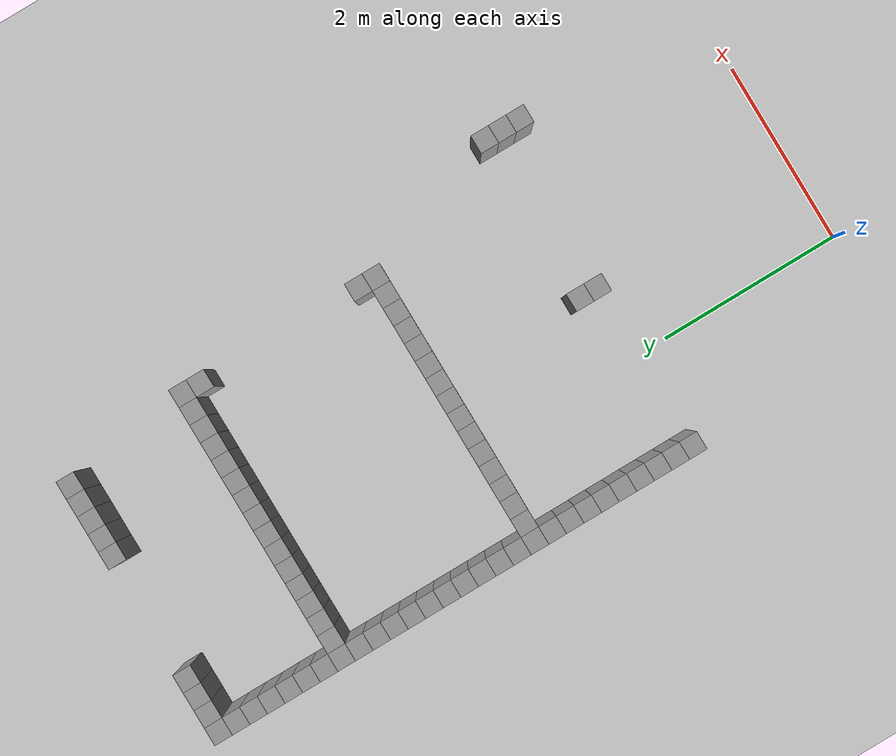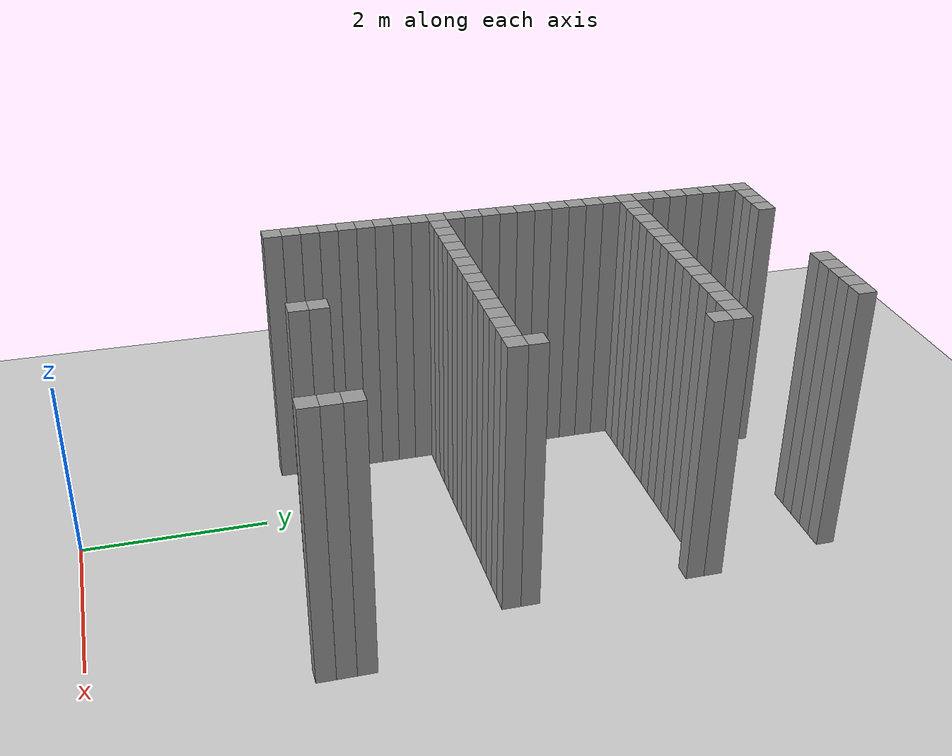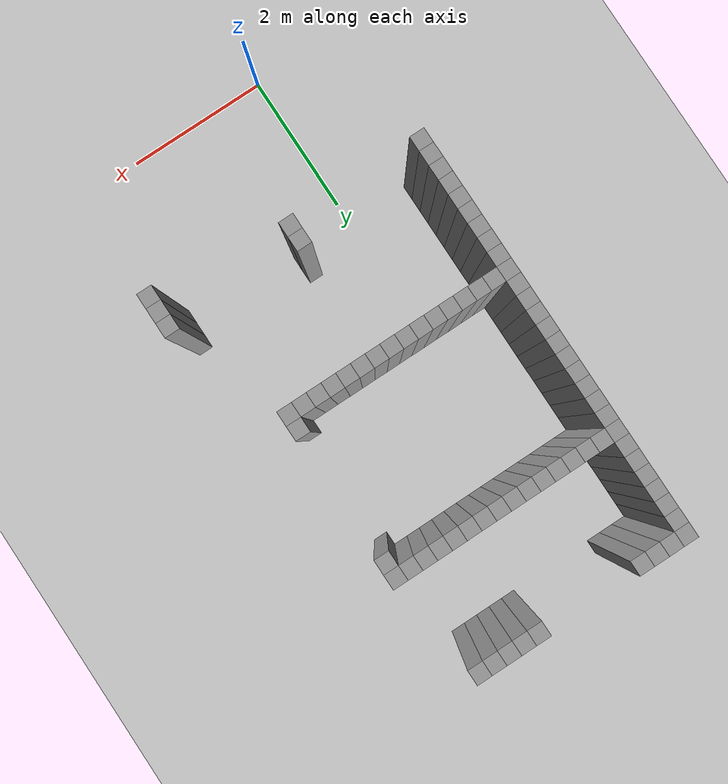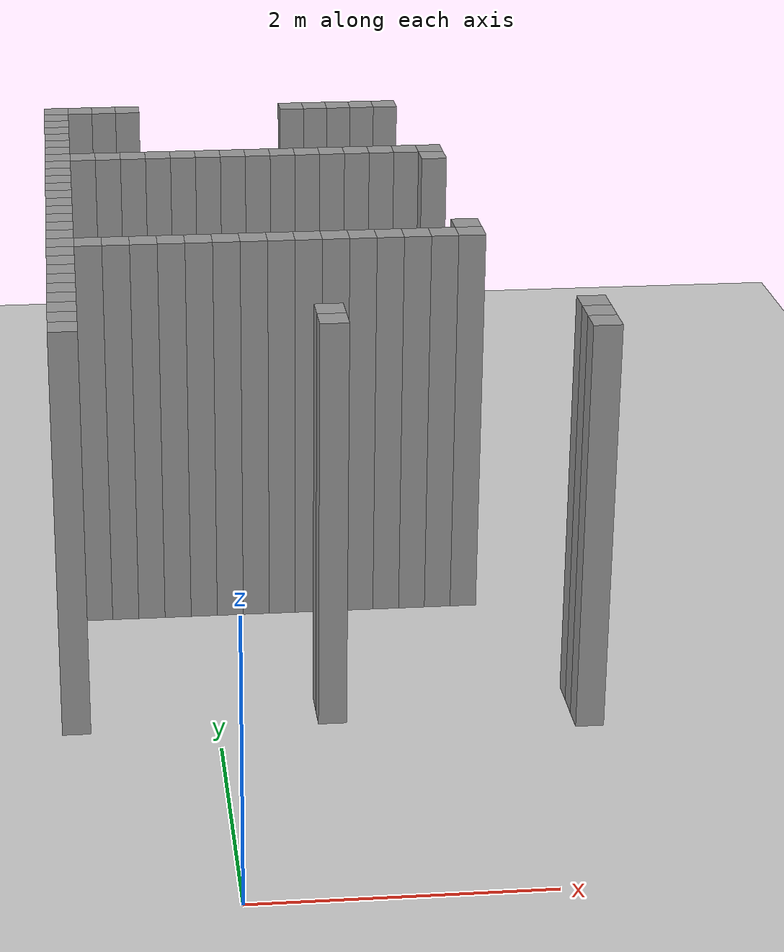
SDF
<sdf version="1.7">
 <world name="default">
  <model name="ground_plane">
   <static>1</static>
   <link name="link">
    <collision name="collision">
     <geometry><plane><normal>0 0 1</normal><size>100 100</size></plane></geometry>
     <surface>
      <contact><collide_bitmask>65535</collide_bitmask></contact>
      <friction><ode><mu>100</mu><mu2>50</mu2></ode></friction>
     </surface>
    </collision>
    <visual name="visual">
     <cast_shadows>0</cast_shadows>
     <geometry><plane><normal>0 0 1</normal><size>100 100</size></plane></geometry>
     <material>
      <script><uri>file://media/materials/scripts/gazebo.material</uri><name>Gazebo/Grey</name></script>
     </material>
    </visual>
   </link>
  </model>
  <model name="image1">
   <pose>-1 -1 0 0 -0 0</pose>
   <link name="Wall_17">
    <collision name="Wall_17_Collision">
     <geometry><box><size>0.2 0.2 3</size></box></geometry>
     <pose>0 0 1.5 0 -0 0</pose>
    </collision>
    <visual name="Wall_17_Visual">
     <pose>0 0 1.5 0 -0 0</pose>
     <geometry><box><size>0.2 0.2 3</size></box></geometry>
     <material>
      <script><uri>file://media/materials/scripts/gazebo.material</uri><name>Gazebo/Grey</name></script>
      <ambient>1 1 1 1</ambient>
     </material>
     <meta><layer>0</layer></meta>
    </visual>
    <pose>0.0 3.4000000000000004 0 0 -0 0</pose>
   </link>
   <link name="Wall_18">
    <collision name="Wall_18_Collision">
     <geometry><box><size>0.2 0.2 3</size></box></geometry>
     <pose>0 0 1.5 0 -0 0</pose>
    </collision>
    <visual name="Wall_18_Visual">
     <pose>0 0 1.5 0 -0 0</pose>
     <geometry><box><size>0.2 0.2 3</size></box></geometry>
     <material>
      <script><uri>file://media/materials/scripts/gazebo.material</uri><name>Gazebo/Grey</name></script>
      <ambient>1 1 1 1</ambient>
     </material>
     <meta><layer>0</layer></meta>
    </visual>
    <pose>0.0 3.6 0 0 -0 0</pose>
   </link>
   <link name="Wall_19">
    <collision name="Wall_19_Collision">
     <geometry><box><size>0.2 0.2 3</size></box></geometry>
     <pose>0 0 1.5 0 -0 0</pose>
    </collision>
    <visual name="Wall_19_Visual">
     <pose>0 0 1.5 0 -0 0</pose>
     <geometry><box><size>0.2 0.2 3</size></box></geometry>
     <material>
      <script><uri>file://media/materials/scripts/gazebo.material</uri><name>Gazebo/Grey</name></script>
      <ambient>1 1 1 1</ambient>
     </material>
     <meta><layer>0</layer></meta>
    </visual>
    <pose>0.0 3.8000000000000003 0 0 -0 0</pose>
   </link>
   <link name="Wall_20">
    <collision name="Wall_20_Collision">
     <geometry><box><size>0.2 0.2 3</size></box></geometry>
     <pose>0 0 1.5 0 -0 0</pose>
    </collision>
    <visual name="Wall_20_Visual">
     <pose>0 0 1.5 0 -0 0</pose>
     <geometry><box><size>0.2 0.2 3</size></box></geometry>
     <material>
      <script><uri>file://media/materials/scripts/gazebo.material</uri><name>Gazebo/Grey</name></script>
      <ambient>1 1 1 1</ambient>
     </material>
     <meta><layer>0</layer></meta>
    </visual>
    <pose>0.0 4.0 0 0 -0 0</pose>
   </link>
   <link name="Wall_21">
    <collision name="Wall_21_Collision">
     <geometry><box><size>0.2 0.2 3</size></box></geometry>
     <pose>0 0 1.5 0 -0 0</pose>
    </collision>
    <visual name="Wall_21_Visual">
     <pose>0 0 1.5 0 -0 0</pose>
     <geometry><box><size>0.2 0.2 3</size></box></geometry>
     <material>
      <script><uri>file://media/materials/scripts/gazebo.material</uri><name>Gazebo/Grey</name></script>
      <ambient>1 1 1 1</ambient>
     </material>
     <meta><layer>0</layer></meta>
    </visual>
    <pose>0.0 4.2 0 0 -0 0</pose>
   </link>
   <link name="Wall_22">
    <collision name="Wall_22_Collision">
     <geometry><box><size>0.2 0.2 3</size></box></geometry>
     <pose>0 0 1.5 0 -0 0</pose>
    </collision>
    <visual name="Wall_22_Visual">
     <pose>0 0 1.5 0 -0 0</pose>
     <geometry><box><size>0.2 0.2 3</size></box></geometry>
     <material>
      <script><uri>file://media/materials/scripts/gazebo.material</uri><name>Gazebo/Grey</name></script>
      <ambient>1 1 1 1</ambient>
     </material>
     <meta><layer>0</layer></meta>
    </visual>
    <pose>0.0 4.4 0 0 -0 0</pose>
   </link>
   <link name="Wall_23">
    <collision name="Wall_23_Collision">
     <geometry><box><size>0.2 0.2 3</size></box></geometry>
     <pose>0 0 1.5 0 -0 0</pose>
    </collision>
    <visual name="Wall_23_Visual">
     <pose>0 0 1.5 0 -0 0</pose>
     <geometry><box><size>0.2 0.2 3</size></box></geometry>
     <material>
      <script><uri>file://media/materials/scripts/gazebo.material</uri><name>Gazebo/Grey</name></script>
      <ambient>1 1 1 1</ambient>
     </material>
     <meta><layer>0</layer></meta>
    </visual>
    <pose>0.0 4.6000000000000005 0 0 -0 0</pose>
   </link>
   <link name="Wall_24">
    <collision name="Wall_24_Collision">
     <geometry><box><size>0.2 0.2 3</size></box></geometry>
     <pose>0 0 1.5 0 -0 0</pose>
    </collision>
    <visual name="Wall_24_Visual">
     <pose>0 0 1.5 0 -0 0</pose>
     <geometry><box><size>0.2 0.2 3</size></box></geometry>
     <material>
      <script><uri>file://media/materials/scripts/gazebo.material</uri><name>Gazebo/Grey</name></script>
      <ambient>1 1 1 1</ambient>
     </material>
     <meta><layer>0</layer></meta>
    </visual>
    <pose>0.0 4.800000000000001 0 0 -0 0</pose>
   </link>
   <link name="Wall_25">
    <collision name="Wall_25_Collision">
     <geometry><box><size>0.2 0.2 3</size></box></geometry>
     <pose>0 0 1.5 0 -0 0</pose>
    </collision>
    <visual name="Wall_25_Visual">
     <pose>0 0 1.5 0 -0 0</pose>
     <geometry><box><size>0.2 0.2 3</size></box></geometry>
     <material>
      <script><uri>file://media/materials/scripts/gazebo.material</uri><name>Gazebo/Grey</name></script>
      <ambient>1 1 1 1</ambient>
     </material>
     <meta><layer>0</layer></meta>
    </visual>
    <pose>0.0 5.0 0 0 -0 0</pose>
   </link>
   <link name="Wall_26">
    <collision name="Wall_26_Collision">
     <geometry><box><size>0.2 0.2 3</size></box></geometry>
     <pose>0 0 1.5 0 -0 0</pose>
    </collision>
    <visual name="Wall_26_Visual">
     <pose>0 0 1.5 0 -0 0</pose>
     <geometry><box><size>0.2 0.2 3</size></box></geometry>
     <material>
      <script><uri>file://media/materials/scripts/gazebo.material</uri><name>Gazebo/Grey</name></script>
      <ambient>1 1 1 1</ambient>
     </material>
     <meta><layer>0</layer></meta>
    </visual>
    <pose>0.0 5.2 0 0 -0 0</pose>
   </link>
   <link name="Wall_27">
    <collision name="Wall_27_Collision">
     <geometry><box><size>0.2 0.2 3</size></box></geometry>
     <pose>0 0 1.5 0 -0 0</pose>
    </collision>
    <visual name="Wall_27_Visual">
     <pose>0 0 1.5 0 -0 0</pose>
     <geometry><box><size>0.2 0.2 3</size></box></geometry>
     <material>
      <script><uri>file://media/materials/scripts/gazebo.material</uri><name>Gazebo/Grey</name></script>
      <ambient>1 1 1 1</ambient>
     </material>
     <meta><layer>0</layer></meta>
    </visual>
    <pose>0.0 5.4 0 0 -0 0</pose>
   </link>
   <link name="Wall_28">
    <collision name="Wall_28_Collision">
     <geometry><box><size>0.2 0.2 3</size></box></geometry>
     <pose>0 0 1.5 0 -0 0</pose>
    </collision>
    <visual name="Wall_28_Visual">
     <pose>0 0 1.5 0 -0 0</pose>
     <geometry><box><size>0.2 0.2 3</size></box></geometry>
     <material>
      <script><uri>file://media/materials/scripts/gazebo.material</uri><name>Gazebo/Grey</name></script>
      <ambient>1 1 1 1</ambient>
     </material>
     <meta><layer>0</layer></meta>
    </visual>
    <pose>0.0 5.6000000000000005 0 0 -0 0</pose>
   </link>
   <link name="Wall_29">
    <collision name="Wall_29_Collision">
     <geometry><box><size>0.2 0.2 3</size></box></geometry>
     <pose>0 0 1.5 0 -0 0</pose>
    </collision>
    <visual name="Wall_29_Visual">
     <pose>0 0 1.5 0 -0 0</pose>
     <geometry><box><size>0.2 0.2 3</size></box></geometry>
     <material>
      <script><uri>file://media/materials/scripts/gazebo.material</uri><name>Gazebo/Grey</name></script>
      <ambient>1 1 1 1</ambient>
     </material>
     <meta><layer>0</layer></meta>
    </visual>
    <pose>0.0 5.800000000000001 0 0 -0 0</pose>
   </link>
   <link name="Wall_30">
    <collision name="Wall_30_Collision">
     <geometry><box><size>0.2 0.2 3</size></box></geometry>
     <pose>0 0 1.5 0 -0 0</pose>
    </collision>
    <visual name="Wall_30_Visual">
     <pose>0 0 1.5 0 -0 0</pose>
     <geometry><box><size>0.2 0.2 3</size></box></geometry>
     <material>
      <script><uri>file://media/materials/scripts/gazebo.material</uri><name>Gazebo/Grey</name></script>
      <ambient>1 1 1 1</ambient>
     </material>
     <meta><layer>0</layer></meta>
    </visual>
    <pose>0.0 6.0 0 0 -0 0</pose>
   </link>
   <link name="Wall_31">
    <collision name="Wall_31_Collision">
     <geometry><box><size>0.2 0.2 3</size></box></geometry>
     <pose>0 0 1.5 0 -0 0</pose>
    </collision>
    <visual name="Wall_31_Visual">
     <pose>0 0 1.5 0 -0 0</pose>
     <geometry><box><size>0.2 0.2 3</size></box></geometry>
     <material>
      <script><uri>file://media/materials/scripts/gazebo.material</uri><name>Gazebo/Grey</name></script>
      <ambient>1 1 1 1</ambient>
     </material>
     <meta><layer>0</layer></meta>
    </visual>
    <pose>0.0 6.2 0 0 -0 0</pose>
   </link>
   <link name="Wall_32">
    <collision name="Wall_32_Collision">
     <geometry><box><size>0.2 0.2 3</size></box></geometry>
     <pose>0 0 1.5 0 -0 0</pose>
    </collision>
    <visual name="Wall_32_Visual">
     <pose>0 0 1.5 0 -0 0</pose>
     <geometry><box><size>0.2 0.2 3</size></box></geometry>
     <material>
      <script><uri>file://media/materials/scripts/gazebo.material</uri><name>Gazebo/Grey</name></script>
      <ambient>1 1 1 1</ambient>
     </material>
     <meta><layer>0</layer></meta>
    </visual>
    <pose>0.0 6.4 0 0 -0 0</pose>
   </link>
   <link name="Wall_33">
    <collision name="Wall_33_Collision">
     <geometry><box><size>0.2 0.2 3</size></box></geometry>
     <pose>0 0 1.5 0 -0 0</pose>
    </collision>
    <visual name="Wall_33_Visual">
     <pose>0 0 1.5 0 -0 0</pose>
     <geometry><box><size>0.2 0.2 3</size></box></geometry>
     <material>
      <script><uri>file://media/materials/scripts/gazebo.material</uri><name>Gazebo/Grey</name></script>
      <ambient>1 1 1 1</ambient>
     </material>
     <meta><layer>0</layer></meta>
    </visual>
    <pose>0.0 6.6000000000000005 0 0 -0 0</pose>
   </link>
   <link name="Wall_34">
    <collision name="Wall_34_Collision">
     <geometry><box><size>0.2 0.2 3</size></box></geometry>
     <pose>0 0 1.5 0 -0 0</pose>
    </collision>
    <visual name="Wall_34_Visual">
     <pose>0 0 1.5 0 -0 0</pose>
     <geometry><box><size>0.2 0.2 3</size></box></geometry>
     <material>
      <script><uri>file://media/materials/scripts/gazebo.material</uri><name>Gazebo/Grey</name></script>
      <ambient>1 1 1 1</ambient>
     </material>
     <meta><layer>0</layer></meta>
    </visual>
    <pose>0.0 6.800000000000001 0 0 -0 0</pose>
   </link>
   <link name="Wall_35">
    <collision name="Wall_35_Collision">
     <geometry><box><size>0.2 0.2 3</size></box></geometry>
     <pose>0 0 1.5 0 -0 0</pose>
    </collision>
    <visual name="Wall_35_Visual">
     <pose>0 0 1.5 0 -0 0</pose>
     <geometry><box><size>0.2 0.2 3</size></box></geometry>
     <material>
      <script><uri>file://media/materials/scripts/gazebo.material</uri><name>Gazebo/Grey</name></script>
      <ambient>1 1 1 1</ambient>
     </material>
     <meta><layer>0</layer></meta>
    </visual>
    <pose>0.0 7.0 0 0 -0 0</pose>
   </link>
   <link name="Wall_36">
    <collision name="Wall_36_Collision">
     <geometry><box><size>0.2 0.2 3</size></box></geometry>
     <pose>0 0 1.5 0 -0 0</pose>
    </collision>
    <visual name="Wall_36_Visual">
     <pose>0 0 1.5 0 -0 0</pose>
     <geometry><box><size>0.2 0.2 3</size></box></geometry>
     <material>
      <script><uri>file://media/materials/scripts/gazebo.material</uri><name>Gazebo/Grey</name></script>
      <ambient>1 1 1 1</ambient>
     </material>
     <meta><layer>0</layer></meta>
    </visual>
    <pose>0.0 7.2 0 0 -0 0</pose>
   </link>
   <link name="Wall_37">
    <collision name="Wall_37_Collision">
     <geometry><box><size>0.2 0.2 3</size></box></geometry>
     <pose>0 0 1.5 0 -0 0</pose>
    </collision>
    <visual name="Wall_37_Visual">
     <pose>0 0 1.5 0 -0 0</pose>
     <geometry><box><size>0.2 0.2 3</size></box></geometry>
     <material>
      <script><uri>file://media/materials/scripts/gazebo.material</uri><name>Gazebo/Grey</name></script>
      <ambient>1 1 1 1</ambient>
     </material>
     <meta><layer>0</layer></meta>
    </visual>
    <pose>0.0 7.4 0 0 -0 0</pose>
   </link>
   <link name="Wall_38">
    <collision name="Wall_38_Collision">
     <geometry><box><size>0.2 0.2 3</size></box></geometry>
     <pose>0 0 1.5 0 -0 0</pose>
    </collision>
    <visual name="Wall_38_Visual">
     <pose>0 0 1.5 0 -0 0</pose>
     <geometry><box><size>0.2 0.2 3</size></box></geometry>
     <material>
      <script><uri>file://media/materials/scripts/gazebo.material</uri><name>Gazebo/Grey</name></script>
      <ambient>1 1 1 1</ambient>
     </material>
     <meta><layer>0</layer></meta>
    </visual>
    <pose>0.0 7.6000000000000005 0 0 -0 0</pose>
   </link>
   <link name="Wall_39">
    <collision name="Wall_39_Collision">
     <geometry><box><size>0.2 0.2 3</size></box></geometry>
     <pose>0 0 1.5 0 -0 0</pose>
    </collision>
    <visual name="Wall_39_Visual">
     <pose>0 0 1.5 0 -0 0</pose>
     <geometry><box><size>0.2 0.2 3</size></box></geometry>
     <material>
      <script><uri>file://media/materials/scripts/gazebo.material</uri><name>Gazebo/Grey</name></script>
      <ambient>1 1 1 1</ambient>
     </material>
     <meta><layer>0</layer></meta>
    </visual>
    <pose>0.0 7.800000000000001 0 0 -0 0</pose>
   </link>
   <link name="Wall_40">
    <collision name="Wall_40_Collision">
     <geometry><box><size>0.2 0.2 3</size></box></geometry>
     <pose>0 0 1.5 0 -0 0</pose>
    </collision>
    <visual name="Wall_40_Visual">
     <pose>0 0 1.5 0 -0 0</pose>
     <geometry><box><size>0.2 0.2 3</size></box></geometry>
     <material>
      <script><uri>file://media/materials/scripts/gazebo.material</uri><name>Gazebo/Grey</name></script>
      <ambient>1 1 1 1</ambient>
     </material>
     <meta><layer>0</layer></meta>
    </visual>
    <pose>0.0 8.0 0 0 -0 0</pose>
   </link>
   <link name="Wall_41">
    <collision name="Wall_41_Collision">
     <geometry><box><size>0.2 0.2 3</size></box></geometry>
     <pose>0 0 1.5 0 -0 0</pose>
    </collision>
    <visual name="Wall_41_Visual">
     <pose>0 0 1.5 0 -0 0</pose>
     <geometry><box><size>0.2 0.2 3</size></box></geometry>
     <material>
      <script><uri>file://media/materials/scripts/gazebo.material</uri><name>Gazebo/Grey</name></script>
      <ambient>1 1 1 1</ambient>
     </material>
     <meta><layer>0</layer></meta>
    </visual>
    <pose>0.0 8.200000000000001 0 0 -0 0</pose>
   </link>
   <link name="Wall_42">
    <collision name="Wall_42_Collision">
     <geometry><box><size>0.2 0.2 3</size></box></geometry>
     <pose>0 0 1.5 0 -0 0</pose>
    </collision>
    <visual name="Wall_42_Visual">
     <pose>0 0 1.5 0 -0 0</pose>
     <geometry><box><size>0.2 0.2 3</size></box></geometry>
     <material>
      <script><uri>file://media/materials/scripts/gazebo.material</uri><name>Gazebo/Grey</name></script>
      <ambient>1 1 1 1</ambient>
     </material>
     <meta><layer>0</layer></meta>
    </visual>
    <pose>0.0 8.4 0 0 -0 0</pose>
   </link>
   <link name="Wall_43">
    <collision name="Wall_43_Collision">
     <geometry><box><size>0.2 0.2 3</size></box></geometry>
     <pose>0 0 1.5 0 -0 0</pose>
    </collision>
    <visual name="Wall_43_Visual">
     <pose>0 0 1.5 0 -0 0</pose>
     <geometry><box><size>0.2 0.2 3</size></box></geometry>
     <material>
      <script><uri>file://media/materials/scripts/gazebo.material</uri><name>Gazebo/Grey</name></script>
      <ambient>1 1 1 1</ambient>
     </material>
     <meta><layer>0</layer></meta>
    </visual>
    <pose>0.0 8.6 0 0 -0 0</pose>
   </link>
   <link name="Wall_44">
    <collision name="Wall_44_Collision">
     <geometry><box><size>0.2 0.2 3</size></box></geometry>
     <pose>0 0 1.5 0 -0 0</pose>
    </collision>
    <visual name="Wall_44_Visual">
     <pose>0 0 1.5 0 -0 0</pose>
     <geometry><box><size>0.2 0.2 3</size></box></geometry>
     <material>
      <script><uri>file://media/materials/scripts/gazebo.material</uri><name>Gazebo/Grey</name></script>
      <ambient>1 1 1 1</ambient>
     </material>
     <meta><layer>0</layer></meta>
    </visual>
    <pose>0.0 8.8 0 0 -0 0</pose>
   </link>
   <link name="Wall_61">
    <collision name="Wall_61_Collision">
     <geometry><box><size>0.2 0.2 3</size></box></geometry>
     <pose>0 0 1.5 0 -0 0</pose>
    </collision>
    <visual name="Wall_61_Visual">
     <pose>0 0 1.5 0 -0 0</pose>
     <geometry><box><size>0.2 0.2 3</size></box></geometry>
     <material>
      <script><uri>file://media/materials/scripts/gazebo.material</uri><name>Gazebo/Grey</name></script>
      <ambient>1 1 1 1</ambient>
     </material>
     <meta><layer>0</layer></meta>
    </visual>
    <pose>0.2 5.2 0 0 -0 0</pose>
   </link>
   <link name="Wall_62">
    <collision name="Wall_62_Collision">
     <geometry><box><size>0.2 0.2 3</size></box></geometry>
     <pose>0 0 1.5 0 -0 0</pose>
    </collision>
    <visual name="Wall_62_Visual">
     <pose>0 0 1.5 0 -0 0</pose>
     <geometry><box><size>0.2 0.2 3</size></box></geometry>
     <material>
      <script><uri>file://media/materials/scripts/gazebo.material</uri><name>Gazebo/Grey</name></script>
      <ambient>1 1 1 1</ambient>
     </material>
     <meta><layer>0</layer></meta>
    </visual>
    <pose>0.2 7.4 0 0 -0 0</pose>
   </link>
   <link name="Wall_63">
    <collision name="Wall_63_Collision">
     <geometry><box><size>0.2 0.2 3</size></box></geometry>
     <pose>0 0 1.5 0 -0 0</pose>
    </collision>
    <visual name="Wall_63_Visual">
     <pose>0 0 1.5 0 -0 0</pose>
     <geometry><box><size>0.2 0.2 3</size></box></geometry>
     <material>
      <script><uri>file://media/materials/scripts/gazebo.material</uri><name>Gazebo/Grey</name></script>
      <ambient>1 1 1 1</ambient>
     </material>
     <meta><layer>0</layer></meta>
    </visual>
    <pose>0.2 8.8 0 0 -0 0</pose>
   </link>
   <link name="Wall_66">
    <collision name="Wall_66_Collision">
     <geometry><box><size>0.2 0.2 3</size></box></geometry>
     <pose>0 0 1.5 0 -0 0</pose>
    </collision>
    <visual name="Wall_66_Visual">
     <pose>0 0 1.5 0 -0 0</pose>
     <geometry><box><size>0.2 0.2 3</size></box></geometry>
     <material>
      <script><uri>file://media/materials/scripts/gazebo.material</uri><name>Gazebo/Grey</name></script>
      <ambient>1 1 1 1</ambient>
     </material>
     <meta><layer>0</layer></meta>
    </visual>
    <pose>0.4 5.2 0 0 -0 0</pose>
   </link>
   <link name="Wall_67">
    <collision name="Wall_67_Collision">
     <geometry><box><size>0.2 0.2 3</size></box></geometry>
     <pose>0 0 1.5 0 -0 0</pose>
    </collision>
    <visual name="Wall_67_Visual">
     <pose>0 0 1.5 0 -0 0</pose>
     <geometry><box><size>0.2 0.2 3</size></box></geometry>
     <material>
      <script><uri>file://media/materials/scripts/gazebo.material</uri><name>Gazebo/Grey</name></script>
      <ambient>1 1 1 1</ambient>
     </material>
     <meta><layer>0</layer></meta>
    </visual>
    <pose>0.4 7.4 0 0 -0 0</pose>
   </link>
   <link name="Wall_68">
    <collision name="Wall_68_Collision">
     <geometry><box><size>0.2 0.2 3</size></box></geometry>
     <pose>0 0 1.5 0 -0 0</pose>
    </collision>
    <visual name="Wall_68_Visual">
     <pose>0 0 1.5 0 -0 0</pose>
     <geometry><box><size>0.2 0.2 3</size></box></geometry>
     <material>
      <script><uri>file://media/materials/scripts/gazebo.material</uri><name>Gazebo/Grey</name></script>
      <ambient>1 1 1 1</ambient>
     </material>
     <meta><layer>0</layer></meta>
    </visual>
    <pose>0.4 8.8 0 0 -0 0</pose>
   </link>
   <link name="Wall_71">
    <collision name="Wall_71_Collision">
     <geometry><box><size>0.2 0.2 3</size></box></geometry>
     <pose>0 0 1.5 0 -0 0</pose>
    </collision>
    <visual name="Wall_71_Visual">
     <pose>0 0 1.5 0 -0 0</pose>
     <geometry><box><size>0.2 0.2 3</size></box></geometry>
     <material>
      <script><uri>file://media/materials/scripts/gazebo.material</uri><name>Gazebo/Grey</name></script>
      <ambient>1 1 1 1</ambient>
     </material>
     <meta><layer>0</layer></meta>
    </visual>
    <pose>0.6000000000000001 5.2 0 0 -0 0</pose>
   </link>
   <link name="Wall_72">
    <collision name="Wall_72_Collision">
     <geometry><box><size>0.2 0.2 3</size></box></geometry>
     <pose>0 0 1.5 0 -0 0</pose>
    </collision>
    <visual name="Wall_72_Visual">
     <pose>0 0 1.5 0 -0 0</pose>
     <geometry><box><size>0.2 0.2 3</size></box></geometry>
     <material>
      <script><uri>file://media/materials/scripts/gazebo.material</uri><name>Gazebo/Grey</name></script>
      <ambient>1 1 1 1</ambient>
     </material>
     <meta><layer>0</layer></meta>
    </visual>
    <pose>0.6000000000000001 7.4 0 0 -0 0</pose>
   </link>
   <link name="Wall_73">
    <collision name="Wall_73_Collision">
     <geometry><box><size>0.2 0.2 3</size></box></geometry>
     <pose>0 0 1.5 0 -0 0</pose>
    </collision>
    <visual name="Wall_73_Visual">
     <pose>0 0 1.5 0 -0 0</pose>
     <geometry><box><size>0.2 0.2 3</size></box></geometry>
     <material>
      <script><uri>file://media/materials/scripts/gazebo.material</uri><name>Gazebo/Grey</name></script>
      <ambient>1 1 1 1</ambient>
     </material>
     <meta><layer>0</layer></meta>
    </visual>
    <pose>0.6000000000000001 8.8 0 0 -0 0</pose>
   </link>
   <link name="Wall_76">
    <collision name="Wall_76_Collision">
     <geometry><box><size>0.2 0.2 3</size></box></geometry>
     <pose>0 0 1.5 0 -0 0</pose>
    </collision>
    <visual name="Wall_76_Visual">
     <pose>0 0 1.5 0 -0 0</pose>
     <geometry><box><size>0.2 0.2 3</size></box></geometry>
     <material>
      <script><uri>file://media/materials/scripts/gazebo.material</uri><name>Gazebo/Grey</name></script>
      <ambient>1 1 1 1</ambient>
     </material>
     <meta><layer>0</layer></meta>
    </visual>
    <pose>0.8 5.2 0 0 -0 0</pose>
   </link>
   <link name="Wall_77">
    <collision name="Wall_77_Collision">
     <geometry><box><size>0.2 0.2 3</size></box></geometry>
     <pose>0 0 1.5 0 -0 0</pose>
    </collision>
    <visual name="Wall_77_Visual">
     <pose>0 0 1.5 0 -0 0</pose>
     <geometry><box><size>0.2 0.2 3</size></box></geometry>
     <material>
      <script><uri>file://media/materials/scripts/gazebo.material</uri><name>Gazebo/Grey</name></script>
      <ambient>1 1 1 1</ambient>
     </material>
     <meta><layer>0</layer></meta>
    </visual>
    <pose>0.8 7.4 0 0 -0 0</pose>
   </link>
   <link name="Wall_80">
    <collision name="Wall_80_Collision">
     <geometry><box><size>0.2 0.2 3</size></box></geometry>
     <pose>0 0 1.5 0 -0 0</pose>
    </collision>
    <visual name="Wall_80_Visual">
     <pose>0 0 1.5 0 -0 0</pose>
     <geometry><box><size>0.2 0.2 3</size></box></geometry>
     <material>
      <script><uri>file://media/materials/scripts/gazebo.material</uri><name>Gazebo/Grey</name></script>
      <ambient>1 1 1 1</ambient>
     </material>
     <meta><layer>0</layer></meta>
    </visual>
    <pose>1.0 5.2 0 0 -0 0</pose>
   </link>
   <link name="Wall_81">
    <collision name="Wall_81_Collision">
     <geometry><box><size>0.2 0.2 3</size></box></geometry>
     <pose>0 0 1.5 0 -0 0</pose>
    </collision>
    <visual name="Wall_81_Visual">
     <pose>0 0 1.5 0 -0 0</pose>
     <geometry><box><size>0.2 0.2 3</size></box></geometry>
     <material>
      <script><uri>file://media/materials/scripts/gazebo.material</uri><name>Gazebo/Grey</name></script>
      <ambient>1 1 1 1</ambient>
     </material>
     <meta><layer>0</layer></meta>
    </visual>
    <pose>1.0 7.4 0 0 -0 0</pose>
   </link>
   <link name="Wall_84">
    <collision name="Wall_84_Collision">
     <geometry><box><size>0.2 0.2 3</size></box></geometry>
     <pose>0 0 1.5 0 -0 0</pose>
    </collision>
    <visual name="Wall_84_Visual">
     <pose>0 0 1.5 0 -0 0</pose>
     <geometry><box><size>0.2 0.2 3</size></box></geometry>
     <material>
      <script><uri>file://media/materials/scripts/gazebo.material</uri><name>Gazebo/Grey</name></script>
      <ambient>1 1 1 1</ambient>
     </material>
     <meta><layer>0</layer></meta>
    </visual>
    <pose>1.2000000000000002 5.2 0 0 -0 0</pose>
   </link>
   <link name="Wall_85">
    <collision name="Wall_85_Collision">
     <geometry><box><size>0.2 0.2 3</size></box></geometry>
     <pose>0 0 1.5 0 -0 0</pose>
    </collision>
    <visual name="Wall_85_Visual">
     <pose>0 0 1.5 0 -0 0</pose>
     <geometry><box><size>0.2 0.2 3</size></box></geometry>
     <material>
      <script><uri>file://media/materials/scripts/gazebo.material</uri><name>Gazebo/Grey</name></script>
      <ambient>1 1 1 1</ambient>
     </material>
     <meta><layer>0</layer></meta>
    </visual>
    <pose>1.2000000000000002 7.4 0 0 -0 0</pose>
   </link>
   <link name="Wall_88">
    <collision name="Wall_88_Collision">
     <geometry><box><size>0.2 0.2 3</size></box></geometry>
     <pose>0 0 1.5 0 -0 0</pose>
    </collision>
    <visual name="Wall_88_Visual">
     <pose>0 0 1.5 0 -0 0</pose>
     <geometry><box><size>0.2 0.2 3</size></box></geometry>
     <material>
      <script><uri>file://media/materials/scripts/gazebo.material</uri><name>Gazebo/Grey</name></script>
      <ambient>1 1 1 1</ambient>
     </material>
     <meta><layer>0</layer></meta>
    </visual>
    <pose>1.4000000000000001 5.2 0 0 -0 0</pose>
   </link>
   <link name="Wall_89">
    <collision name="Wall_89_Collision">
     <geometry><box><size>0.2 0.2 3</size></box></geometry>
     <pose>0 0 1.5 0 -0 0</pose>
    </collision>
    <visual name="Wall_89_Visual">
     <pose>0 0 1.5 0 -0 0</pose>
     <geometry><box><size>0.2 0.2 3</size></box></geometry>
     <material>
      <script><uri>file://media/materials/scripts/gazebo.material</uri><name>Gazebo/Grey</name></script>
      <ambient>1 1 1 1</ambient>
     </material>
     <meta><layer>0</layer></meta>
    </visual>
    <pose>1.4000000000000001 7.4 0 0 -0 0</pose>
   </link>
   <link name="Wall_92">
    <collision name="Wall_92_Collision">
     <geometry><box><size>0.2 0.2 3</size></box></geometry>
     <pose>0 0 1.5 0 -0 0</pose>
    </collision>
    <visual name="Wall_92_Visual">
     <pose>0 0 1.5 0 -0 0</pose>
     <geometry><box><size>0.2 0.2 3</size></box></geometry>
     <material>
      <script><uri>file://media/materials/scripts/gazebo.material</uri><name>Gazebo/Grey</name></script>
      <ambient>1 1 1 1</ambient>
     </material>
     <meta><layer>0</layer></meta>
    </visual>
    <pose>1.6 5.2 0 0 -0 0</pose>
   </link>
   <link name="Wall_93">
    <collision name="Wall_93_Collision">
     <geometry><box><size>0.2 0.2 3</size></box></geometry>
     <pose>0 0 1.5 0 -0 0</pose>
    </collision>
    <visual name="Wall_93_Visual">
     <pose>0 0 1.5 0 -0 0</pose>
     <geometry><box><size>0.2 0.2 3</size></box></geometry>
     <material>
      <script><uri>file://media/materials/scripts/gazebo.material</uri><name>Gazebo/Grey</name></script>
      <ambient>1 1 1 1</ambient>
     </material>
     <meta><layer>0</layer></meta>
    </visual>
    <pose>1.6 7.4 0 0 -0 0</pose>
   </link>
   <link name="Wall_112">
    <collision name="Wall_112_Collision">
     <geometry><box><size>0.2 0.2 3</size></box></geometry>
     <pose>0 0 1.5 0 -0 0</pose>
    </collision>
    <visual name="Wall_112_Visual">
     <pose>0 0 1.5 0 -0 0</pose>
     <geometry><box><size>0.2 0.2 3</size></box></geometry>
     <material>
      <script><uri>file://media/materials/scripts/gazebo.material</uri><name>Gazebo/Grey</name></script>
      <ambient>1 1 1 1</ambient>
     </material>
     <meta><layer>0</layer></meta>
    </visual>
    <pose>1.8 3.4000000000000004 0 0 -0 0</pose>
   </link>
   <link name="Wall_113">
    <collision name="Wall_113_Collision">
     <geometry><box><size>0.2 0.2 3</size></box></geometry>
     <pose>0 0 1.5 0 -0 0</pose>
    </collision>
    <visual name="Wall_113_Visual">
     <pose>0 0 1.5 0 -0 0</pose>
     <geometry><box><size>0.2 0.2 3</size></box></geometry>
     <material>
      <script><uri>file://media/materials/scripts/gazebo.material</uri><name>Gazebo/Grey</name></script>
      <ambient>1 1 1 1</ambient>
     </material>
     <meta><layer>0</layer></meta>
    </visual>
    <pose>1.8 3.6 0 0 -0 0</pose>
   </link>
   <link name="Wall_114">
    <collision name="Wall_114_Collision">
     <geometry><box><size>0.2 0.2 3</size></box></geometry>
     <pose>0 0 1.5 0 -0 0</pose>
    </collision>
    <visual name="Wall_114_Visual">
     <pose>0 0 1.5 0 -0 0</pose>
     <geometry><box><size>0.2 0.2 3</size></box></geometry>
     <material>
      <script><uri>file://media/materials/scripts/gazebo.material</uri><name>Gazebo/Grey</name></script>
      <ambient>1 1 1 1</ambient>
     </material>
     <meta><layer>0</layer></meta>
    </visual>
    <pose>1.8 5.2 0 0 -0 0</pose>
   </link>
   <link name="Wall_115">
    <collision name="Wall_115_Collision">
     <geometry><box><size>0.2 0.2 3</size></box></geometry>
     <pose>0 0 1.5 0 -0 0</pose>
    </collision>
    <visual name="Wall_115_Visual">
     <pose>0 0 1.5 0 -0 0</pose>
     <geometry><box><size>0.2 0.2 3</size></box></geometry>
     <material>
      <script><uri>file://media/materials/scripts/gazebo.material</uri><name>Gazebo/Grey</name></script>
      <ambient>1 1 1 1</ambient>
     </material>
     <meta><layer>0</layer></meta>
    </visual>
    <pose>1.8 7.4 0 0 -0 0</pose>
   </link>
   <link name="Wall_118">
    <collision name="Wall_118_Collision">
     <geometry><box><size>0.2 0.2 3</size></box></geometry>
     <pose>0 0 1.5 0 -0 0</pose>
    </collision>
    <visual name="Wall_118_Visual">
     <pose>0 0 1.5 0 -0 0</pose>
     <geometry><box><size>0.2 0.2 3</size></box></geometry>
     <material>
      <script><uri>file://media/materials/scripts/gazebo.material</uri><name>Gazebo/Grey</name></script>
      <ambient>1 1 1 1</ambient>
     </material>
     <meta><layer>0</layer></meta>
    </visual>
    <pose>2.0 5.2 0 0 -0 0</pose>
   </link>
   <link name="Wall_119">
    <collision name="Wall_119_Collision">
     <geometry><box><size>0.2 0.2 3</size></box></geometry>
     <pose>0 0 1.5 0 -0 0</pose>
    </collision>
    <visual name="Wall_119_Visual">
     <pose>0 0 1.5 0 -0 0</pose>
     <geometry><box><size>0.2 0.2 3</size></box></geometry>
     <material>
      <script><uri>file://media/materials/scripts/gazebo.material</uri><name>Gazebo/Grey</name></script>
      <ambient>1 1 1 1</ambient>
     </material>
     <meta><layer>0</layer></meta>
    </visual>
    <pose>2.0 7.4 0 0 -0 0</pose>
   </link>
   <link name="Wall_120">
    <collision name="Wall_120_Collision">
     <geometry><box><size>0.2 0.2 3</size></box></geometry>
     <pose>0 0 1.5 0 -0 0</pose>
    </collision>
    <visual name="Wall_120_Visual">
     <pose>0 0 1.5 0 -0 0</pose>
     <geometry><box><size>0.2 0.2 3</size></box></geometry>
     <material>
      <script><uri>file://media/materials/scripts/gazebo.material</uri><name>Gazebo/Grey</name></script>
      <ambient>1 1 1 1</ambient>
     </material>
     <meta><layer>0</layer></meta>
    </visual>
    <pose>2.0 8.8 0 0 -0 0</pose>
   </link>
   <link name="Wall_123">
    <collision name="Wall_123_Collision">
     <geometry><box><size>0.2 0.2 3</size></box></geometry>
     <pose>0 0 1.5 0 -0 0</pose>
    </collision>
    <visual name="Wall_123_Visual">
     <pose>0 0 1.5 0 -0 0</pose>
     <geometry><box><size>0.2 0.2 3</size></box></geometry>
     <material>
      <script><uri>file://media/materials/scripts/gazebo.material</uri><name>Gazebo/Grey</name></script>
      <ambient>1 1 1 1</ambient>
     </material>
     <meta><layer>0</layer></meta>
    </visual>
    <pose>2.2 5.2 0 0 -0 0</pose>
   </link>
   <link name="Wall_124">
    <collision name="Wall_124_Collision">
     <geometry><box><size>0.2 0.2 3</size></box></geometry>
     <pose>0 0 1.5 0 -0 0</pose>
    </collision>
    <visual name="Wall_124_Visual">
     <pose>0 0 1.5 0 -0 0</pose>
     <geometry><box><size>0.2 0.2 3</size></box></geometry>
     <material>
      <script><uri>file://media/materials/scripts/gazebo.material</uri><name>Gazebo/Grey</name></script>
      <ambient>1 1 1 1</ambient>
     </material>
     <meta><layer>0</layer></meta>
    </visual>
    <pose>2.2 7.4 0 0 -0 0</pose>
   </link>
   <link name="Wall_125">
    <collision name="Wall_125_Collision">
     <geometry><box><size>0.2 0.2 3</size></box></geometry>
     <pose>0 0 1.5 0 -0 0</pose>
    </collision>
    <visual name="Wall_125_Visual">
     <pose>0 0 1.5 0 -0 0</pose>
     <geometry><box><size>0.2 0.2 3</size></box></geometry>
     <material>
      <script><uri>file://media/materials/scripts/gazebo.material</uri><name>Gazebo/Grey</name></script>
      <ambient>1 1 1 1</ambient>
     </material>
     <meta><layer>0</layer></meta>
    </visual>
    <pose>2.2 8.8 0 0 -0 0</pose>
   </link>
   <link name="Wall_128">
    <collision name="Wall_128_Collision">
     <geometry><box><size>0.2 0.2 3</size></box></geometry>
     <pose>0 0 1.5 0 -0 0</pose>
    </collision>
    <visual name="Wall_128_Visual">
     <pose>0 0 1.5 0 -0 0</pose>
     <geometry><box><size>0.2 0.2 3</size></box></geometry>
     <material>
      <script><uri>file://media/materials/scripts/gazebo.material</uri><name>Gazebo/Grey</name></script>
      <ambient>1 1 1 1</ambient>
     </material>
     <meta><layer>0</layer></meta>
    </visual>
    <pose>2.4000000000000004 5.2 0 0 -0 0</pose>
   </link>
   <link name="Wall_129">
    <collision name="Wall_129_Collision">
     <geometry><box><size>0.2 0.2 3</size></box></geometry>
     <pose>0 0 1.5 0 -0 0</pose>
    </collision>
    <visual name="Wall_129_Visual">
     <pose>0 0 1.5 0 -0 0</pose>
     <geometry><box><size>0.2 0.2 3</size></box></geometry>
     <material>
      <script><uri>file://media/materials/scripts/gazebo.material</uri><name>Gazebo/Grey</name></script>
      <ambient>1 1 1 1</ambient>
     </material>
     <meta><layer>0</layer></meta>
    </visual>
    <pose>2.4000000000000004 7.4 0 0 -0 0</pose>
   </link>
   <link name="Wall_130">
    <collision name="Wall_130_Collision">
     <geometry><box><size>0.2 0.2 3</size></box></geometry>
     <pose>0 0 1.5 0 -0 0</pose>
    </collision>
    <visual name="Wall_130_Visual">
     <pose>0 0 1.5 0 -0 0</pose>
     <geometry><box><size>0.2 0.2 3</size></box></geometry>
     <material>
      <script><uri>file://media/materials/scripts/gazebo.material</uri><name>Gazebo/Grey</name></script>
      <ambient>1 1 1 1</ambient>
     </material>
     <meta><layer>0</layer></meta>
    </visual>
    <pose>2.4000000000000004 8.8 0 0 -0 0</pose>
   </link>
   <link name="Wall_133">
    <collision name="Wall_133_Collision">
     <geometry><box><size>0.2 0.2 3</size></box></geometry>
     <pose>0 0 1.5 0 -0 0</pose>
    </collision>
    <visual name="Wall_133_Visual">
     <pose>0 0 1.5 0 -0 0</pose>
     <geometry><box><size>0.2 0.2 3</size></box></geometry>
     <material>
      <script><uri>file://media/materials/scripts/gazebo.material</uri><name>Gazebo/Grey</name></script>
      <ambient>1 1 1 1</ambient>
     </material>
     <meta><layer>0</layer></meta>
    </visual>
    <pose>2.6 5.2 0 0 -0 0</pose>
   </link>
   <link name="Wall_134">
    <collision name="Wall_134_Collision">
     <geometry><box><size>0.2 0.2 3</size></box></geometry>
     <pose>0 0 1.5 0 -0 0</pose>
    </collision>
    <visual name="Wall_134_Visual">
     <pose>0 0 1.5 0 -0 0</pose>
     <geometry><box><size>0.2 0.2 3</size></box></geometry>
     <material>
      <script><uri>file://media/materials/scripts/gazebo.material</uri><name>Gazebo/Grey</name></script>
      <ambient>1 1 1 1</ambient>
     </material>
     <meta><layer>0</layer></meta>
    </visual>
    <pose>2.6 7.4 0 0 -0 0</pose>
   </link>
   <link name="Wall_135">
    <collision name="Wall_135_Collision">
     <geometry><box><size>0.2 0.2 3</size></box></geometry>
     <pose>0 0 1.5 0 -0 0</pose>
    </collision>
    <visual name="Wall_135_Visual">
     <pose>0 0 1.5 0 -0 0</pose>
     <geometry><box><size>0.2 0.2 3</size></box></geometry>
     <material>
      <script><uri>file://media/materials/scripts/gazebo.material</uri><name>Gazebo/Grey</name></script>
      <ambient>1 1 1 1</ambient>
     </material>
     <meta><layer>0</layer></meta>
    </visual>
    <pose>2.6 8.8 0 0 -0 0</pose>
   </link>
   <link name="Wall_152">
    <collision name="Wall_152_Collision">
     <geometry><box><size>0.2 0.2 3</size></box></geometry>
     <pose>0 0 1.5 0 -0 0</pose>
    </collision>
    <visual name="Wall_152_Visual">
     <pose>0 0 1.5 0 -0 0</pose>
     <geometry><box><size>0.2 0.2 3</size></box></geometry>
     <material>
      <script><uri>file://media/materials/scripts/gazebo.material</uri><name>Gazebo/Grey</name></script>
      <ambient>1 1 1 1</ambient>
     </material>
     <meta><layer>0</layer></meta>
    </visual>
    <pose>2.8000000000000003 5.2 0 0 -0 0</pose>
   </link>
   <link name="Wall_153">
    <collision name="Wall_153_Collision">
     <geometry><box><size>0.2 0.2 3</size></box></geometry>
     <pose>0 0 1.5 0 -0 0</pose>
    </collision>
    <visual name="Wall_153_Visual">
     <pose>0 0 1.5 0 -0 0</pose>
     <geometry><box><size>0.2 0.2 3</size></box></geometry>
     <material>
      <script><uri>file://media/materials/scripts/gazebo.material</uri><name>Gazebo/Grey</name></script>
      <ambient>1 1 1 1</ambient>
     </material>
     <meta><layer>0</layer></meta>
    </visual>
    <pose>2.8000000000000003 7.4 0 0 -0 0</pose>
   </link>
   <link name="Wall_154">
    <collision name="Wall_154_Collision">
     <geometry><box><size>0.2 0.2 3</size></box></geometry>
     <pose>0 0 1.5 0 -0 0</pose>
    </collision>
    <visual name="Wall_154_Visual">
     <pose>0 0 1.5 0 -0 0</pose>
     <geometry><box><size>0.2 0.2 3</size></box></geometry>
     <material>
      <script><uri>file://media/materials/scripts/gazebo.material</uri><name>Gazebo/Grey</name></script>
      <ambient>1 1 1 1</ambient>
     </material>
     <meta><layer>0</layer></meta>
    </visual>
    <pose>2.8000000000000003 8.8 0 0 -0 0</pose>
   </link>
   <link name="Wall_157">
    <collision name="Wall_157_Collision">
     <geometry><box><size>0.2 0.2 3</size></box></geometry>
     <pose>0 0 1.5 0 -0 0</pose>
    </collision>
    <visual name="Wall_157_Visual">
     <pose>0 0 1.5 0 -0 0</pose>
     <geometry><box><size>0.2 0.2 3</size></box></geometry>
     <material>
      <script><uri>file://media/materials/scripts/gazebo.material</uri><name>Gazebo/Grey</name></script>
      <ambient>1 1 1 1</ambient>
     </material>
     <meta><layer>0</layer></meta>
    </visual>
    <pose>3.0 5.2 0 0 -0 0</pose>
   </link>
   <link name="Wall_158">
    <collision name="Wall_158_Collision">
     <geometry><box><size>0.2 0.2 3</size></box></geometry>
     <pose>0 0 1.5 0 -0 0</pose>
    </collision>
    <visual name="Wall_158_Visual">
     <pose>0 0 1.5 0 -0 0</pose>
     <geometry><box><size>0.2 0.2 3</size></box></geometry>
     <material>
      <script><uri>file://media/materials/scripts/gazebo.material</uri><name>Gazebo/Grey</name></script>
      <ambient>1 1 1 1</ambient>
     </material>
     <meta><layer>0</layer></meta>
    </visual>
    <pose>3.0 5.4 0 0 -0 0</pose>
   </link>
   <link name="Wall_159">
    <collision name="Wall_159_Collision">
     <geometry><box><size>0.2 0.2 3</size></box></geometry>
     <pose>0 0 1.5 0 -0 0</pose>
    </collision>
    <visual name="Wall_159_Visual">
     <pose>0 0 1.5 0 -0 0</pose>
     <geometry><box><size>0.2 0.2 3</size></box></geometry>
     <material>
      <script><uri>file://media/materials/scripts/gazebo.material</uri><name>Gazebo/Grey</name></script>
      <ambient>1 1 1 1</ambient>
     </material>
     <meta><layer>0</layer></meta>
    </visual>
    <pose>3.0 7.2 0 0 -0 0</pose>
   </link>
   <link name="Wall_160">
    <collision name="Wall_160_Collision">
     <geometry><box><size>0.2 0.2 3</size></box></geometry>
     <pose>0 0 1.5 0 -0 0</pose>
    </collision>
    <visual name="Wall_160_Visual">
     <pose>0 0 1.5 0 -0 0</pose>
     <geometry><box><size>0.2 0.2 3</size></box></geometry>
     <material>
      <script><uri>file://media/materials/scripts/gazebo.material</uri><name>Gazebo/Grey</name></script>
      <ambient>1 1 1 1</ambient>
     </material>
     <meta><layer>0</layer></meta>
    </visual>
    <pose>3.0 7.4 0 0 -0 0</pose>
   </link>
   <link name="Wall_182">
    <collision name="Wall_182_Collision">
     <geometry><box><size>0.2 0.2 3</size></box></geometry>
     <pose>0 0 1.5 0 -0 0</pose>
    </collision>
    <visual name="Wall_182_Visual">
     <pose>0 0 1.5 0 -0 0</pose>
     <geometry><box><size>0.2 0.2 3</size></box></geometry>
     <material>
      <script><uri>file://media/materials/scripts/gazebo.material</uri><name>Gazebo/Grey</name></script>
      <ambient>1 1 1 1</ambient>
     </material>
     <meta><layer>0</layer></meta>
    </visual>
    <pose>3.6 3.2 0 0 -0 0</pose>
   </link>
   <link name="Wall_183">
    <collision name="Wall_183_Collision">
     <geometry><box><size>0.2 0.2 3</size></box></geometry>
     <pose>0 0 1.5 0 -0 0</pose>
    </collision>
    <visual name="Wall_183_Visual">
     <pose>0 0 1.5 0 -0 0</pose>
     <geometry><box><size>0.2 0.2 3</size></box></geometry>
     <material>
      <script><uri>file://media/materials/scripts/gazebo.material</uri><name>Gazebo/Grey</name></script>
      <ambient>1 1 1 1</ambient>
     </material>
     <meta><layer>0</layer></meta>
    </visual>
    <pose>3.6 3.4000000000000004 0 0 -0 0</pose>
   </link>
   <link name="Wall_184">
    <collision name="Wall_184_Collision">
     <geometry><box><size>0.2 0.2 3</size></box></geometry>
     <pose>0 0 1.5 0 -0 0</pose>
    </collision>
    <visual name="Wall_184_Visual">
     <pose>0 0 1.5 0 -0 0</pose>
     <geometry><box><size>0.2 0.2 3</size></box></geometry>
     <material>
      <script><uri>file://media/materials/scripts/gazebo.material</uri><name>Gazebo/Grey</name></script>
      <ambient>1 1 1 1</ambient>
     </material>
     <meta><layer>0</layer></meta>
    </visual>
    <pose>3.6 3.6 0 0 -0 0</pose>
   </link>
   <static>1</static>
  </model>
 </world>
</sdf>
